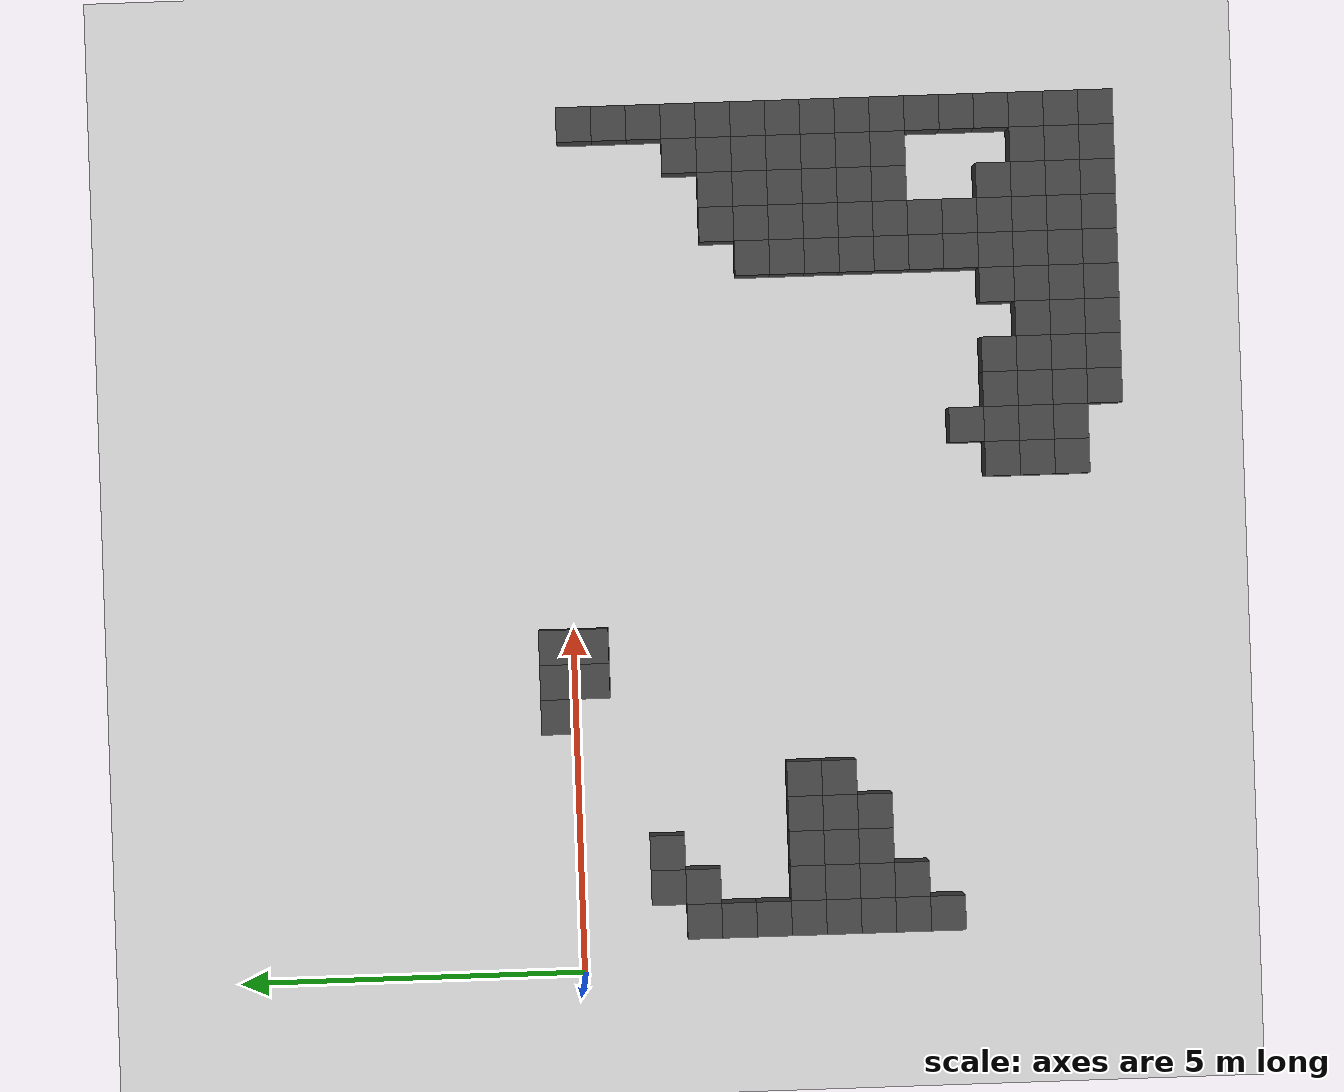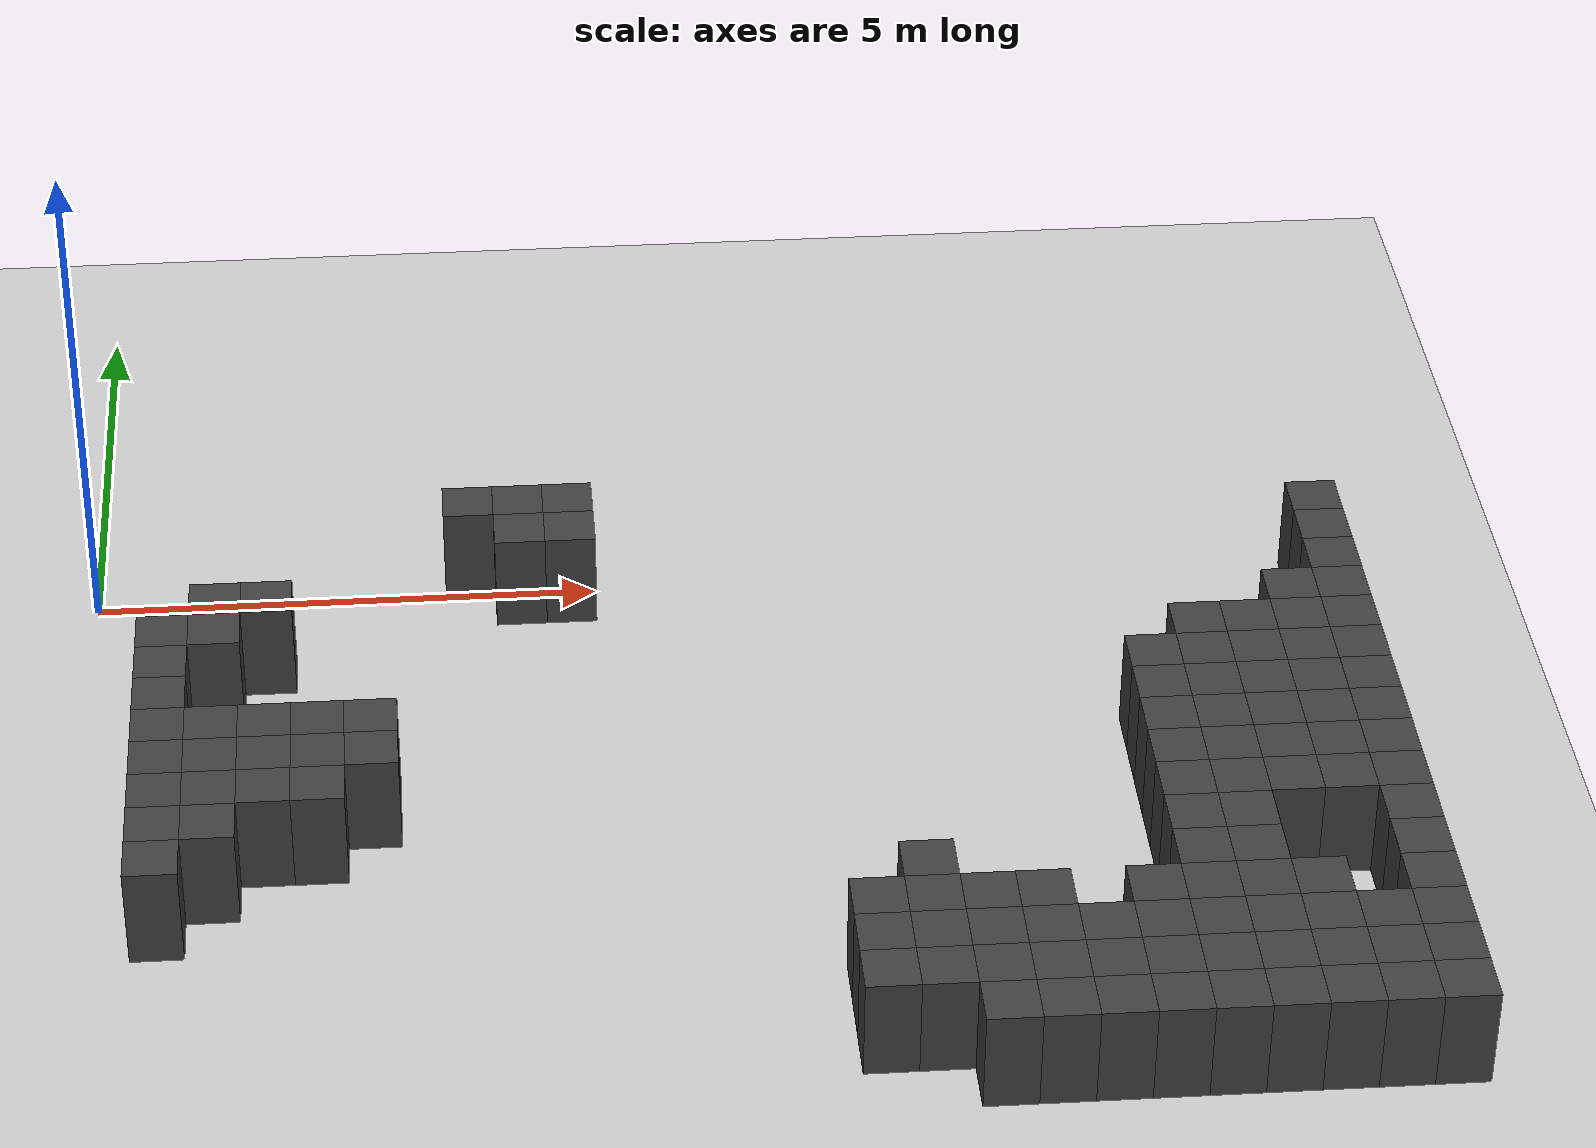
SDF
<sdf version="1.7">
 <world name="map_5937">
  <model name="ground_plane">
   <static>true</static>
   <link name="link">
    <collision name="collision">
     <geometry><plane><normal>0 0 1</normal><size>200 200</size></plane></geometry>
    </collision>
    <visual name="visual">
     <geometry><plane><normal>0 0 1</normal><size>200 200</size></plane></geometry>
     <material><ambient>0.8 0.8 0.8 1</ambient><diffuse>0.8 0.8 0.8 1</diffuse></material>
    </visual>
   </link>
  </model>
  <model name="maze_environment">
   <static>true</static>
   <link name="wall_219">
    <pose>3.750 0.250 0.500 0 0 0</pose>
    <collision name="col"><geometry><box><size>0.5 0.5 1.0</size></box></geometry></collision>
    <visual name="vis">
     <geometry><box><size>0.5 0.5 1.0</size></box></geometry>
     <material><ambient>0.15 0.15 0.15 1</ambient><diffuse>0.25 0.25 0.25 1</diffuse></material>
    </visual>
   </link>
   <link name="wall_220">
    <pose>4.250 0.250 0.500 0 0 0</pose>
    <collision name="col"><geometry><box><size>0.5 0.5 1.0</size></box></geometry></collision>
    <visual name="vis">
     <geometry><box><size>0.5 0.5 1.0</size></box></geometry>
     <material><ambient>0.15 0.15 0.15 1</ambient><diffuse>0.25 0.25 0.25 1</diffuse></material>
    </visual>
   </link>
   <link name="wall_221">
    <pose>4.750 0.250 0.500 0 0 0</pose>
    <collision name="col"><geometry><box><size>0.5 0.5 1.0</size></box></geometry></collision>
    <visual name="vis">
     <geometry><box><size>0.5 0.5 1.0</size></box></geometry>
     <material><ambient>0.15 0.15 0.15 1</ambient><diffuse>0.25 0.25 0.25 1</diffuse></material>
    </visual>
   </link>
   <link name="wall_226">
    <pose>4.250 -0.250 0.500 0 0 0</pose>
    <collision name="col"><geometry><box><size>0.5 0.5 1.0</size></box></geometry></collision>
    <visual name="vis">
     <geometry><box><size>0.5 0.5 1.0</size></box></geometry>
     <material><ambient>0.15 0.15 0.15 1</ambient><diffuse>0.25 0.25 0.25 1</diffuse></material>
    </visual>
   </link>
   <link name="wall_227">
    <pose>4.750 -0.250 0.500 0 0 0</pose>
    <collision name="col"><geometry><box><size>0.5 0.5 1.0</size></box></geometry></collision>
    <visual name="vis">
     <geometry><box><size>0.5 0.5 1.0</size></box></geometry>
     <material><ambient>0.15 0.15 0.15 1</ambient><diffuse>0.25 0.25 0.25 1</diffuse></material>
    </visual>
   </link>
   <link name="wall_228">
    <pose>12.250 -0.250 0.500 0 0 0</pose>
    <collision name="col"><geometry><box><size>0.5 0.5 1.0</size></box></geometry></collision>
    <visual name="vis">
     <geometry><box><size>0.5 0.5 1.0</size></box></geometry>
     <material><ambient>0.15 0.15 0.15 1</ambient><diffuse>0.25 0.25 0.25 1</diffuse></material>
    </visual>
   </link>
   <link name="wall_233">
    <pose>12.250 -0.750 0.500 0 0 0</pose>
    <collision name="col"><geometry><box><size>0.5 0.5 1.0</size></box></geometry></collision>
    <visual name="vis">
     <geometry><box><size>0.5 0.5 1.0</size></box></geometry>
     <material><ambient>0.15 0.15 0.15 1</ambient><diffuse>0.25 0.25 0.25 1</diffuse></material>
    </visual>
   </link>
   <link name="wall_237">
    <pose>1.250 -1.250 0.500 0 0 0</pose>
    <collision name="col"><geometry><box><size>0.5 0.5 1.0</size></box></geometry></collision>
    <visual name="vis">
     <geometry><box><size>0.5 0.5 1.0</size></box></geometry>
     <material><ambient>0.15 0.15 0.15 1</ambient><diffuse>0.25 0.25 0.25 1</diffuse></material>
    </visual>
   </link>
   <link name="wall_238">
    <pose>1.750 -1.250 0.500 0 0 0</pose>
    <collision name="col"><geometry><box><size>0.5 0.5 1.0</size></box></geometry></collision>
    <visual name="vis">
     <geometry><box><size>0.5 0.5 1.0</size></box></geometry>
     <material><ambient>0.15 0.15 0.15 1</ambient><diffuse>0.25 0.25 0.25 1</diffuse></material>
    </visual>
   </link>
   <link name="wall_239">
    <pose>12.250 -1.250 0.500 0 0 0</pose>
    <collision name="col"><geometry><box><size>0.5 0.5 1.0</size></box></geometry></collision>
    <visual name="vis">
     <geometry><box><size>0.5 0.5 1.0</size></box></geometry>
     <material><ambient>0.15 0.15 0.15 1</ambient><diffuse>0.25 0.25 0.25 1</diffuse></material>
    </visual>
   </link>
   <link name="wall_241">
    <pose>0.750 -1.750 0.500 0 0 0</pose>
    <collision name="col"><geometry><box><size>0.5 0.5 1.0</size></box></geometry></collision>
    <visual name="vis">
     <geometry><box><size>0.5 0.5 1.0</size></box></geometry>
     <material><ambient>0.15 0.15 0.15 1</ambient><diffuse>0.25 0.25 0.25 1</diffuse></material>
    </visual>
   </link>
   <link name="wall_242">
    <pose>1.250 -1.750 0.500 0 0 0</pose>
    <collision name="col"><geometry><box><size>0.5 0.5 1.0</size></box></geometry></collision>
    <visual name="vis">
     <geometry><box><size>0.5 0.5 1.0</size></box></geometry>
     <material><ambient>0.15 0.15 0.15 1</ambient><diffuse>0.25 0.25 0.25 1</diffuse></material>
    </visual>
   </link>
   <link name="wall_243">
    <pose>11.750 -1.750 0.500 0 0 0</pose>
    <collision name="col"><geometry><box><size>0.5 0.5 1.0</size></box></geometry></collision>
    <visual name="vis">
     <geometry><box><size>0.5 0.5 1.0</size></box></geometry>
     <material><ambient>0.15 0.15 0.15 1</ambient><diffuse>0.25 0.25 0.25 1</diffuse></material>
    </visual>
   </link>
   <link name="wall_244">
    <pose>12.250 -1.750 0.500 0 0 0</pose>
    <collision name="col"><geometry><box><size>0.5 0.5 1.0</size></box></geometry></collision>
    <visual name="vis">
     <geometry><box><size>0.5 0.5 1.0</size></box></geometry>
     <material><ambient>0.15 0.15 0.15 1</ambient><diffuse>0.25 0.25 0.25 1</diffuse></material>
    </visual>
   </link>
   <link name="wall_247">
    <pose>0.750 -2.250 0.500 0 0 0</pose>
    <collision name="col"><geometry><box><size>0.5 0.5 1.0</size></box></geometry></collision>
    <visual name="vis">
     <geometry><box><size>0.5 0.5 1.0</size></box></geometry>
     <material><ambient>0.15 0.15 0.15 1</ambient><diffuse>0.25 0.25 0.25 1</diffuse></material>
    </visual>
   </link>
   <link name="wall_248">
    <pose>10.750 -2.250 0.500 0 0 0</pose>
    <collision name="col"><geometry><box><size>0.5 0.5 1.0</size></box></geometry></collision>
    <visual name="vis">
     <geometry><box><size>0.5 0.5 1.0</size></box></geometry>
     <material><ambient>0.15 0.15 0.15 1</ambient><diffuse>0.25 0.25 0.25 1</diffuse></material>
    </visual>
   </link>
   <link name="wall_249">
    <pose>11.250 -2.250 0.500 0 0 0</pose>
    <collision name="col"><geometry><box><size>0.5 0.5 1.0</size></box></geometry></collision>
    <visual name="vis">
     <geometry><box><size>0.5 0.5 1.0</size></box></geometry>
     <material><ambient>0.15 0.15 0.15 1</ambient><diffuse>0.25 0.25 0.25 1</diffuse></material>
    </visual>
   </link>
   <link name="wall_250">
    <pose>11.750 -2.250 0.500 0 0 0</pose>
    <collision name="col"><geometry><box><size>0.5 0.5 1.0</size></box></geometry></collision>
    <visual name="vis">
     <geometry><box><size>0.5 0.5 1.0</size></box></geometry>
     <material><ambient>0.15 0.15 0.15 1</ambient><diffuse>0.25 0.25 0.25 1</diffuse></material>
    </visual>
   </link>
   <link name="wall_251">
    <pose>12.250 -2.250 0.500 0 0 0</pose>
    <collision name="col"><geometry><box><size>0.5 0.5 1.0</size></box></geometry></collision>
    <visual name="vis">
     <geometry><box><size>0.5 0.5 1.0</size></box></geometry>
     <material><ambient>0.15 0.15 0.15 1</ambient><diffuse>0.25 0.25 0.25 1</diffuse></material>
    </visual>
   </link>
   <link name="wall_255">
    <pose>0.750 -2.750 0.500 0 0 0</pose>
    <collision name="col"><geometry><box><size>0.5 0.5 1.0</size></box></geometry></collision>
    <visual name="vis">
     <geometry><box><size>0.5 0.5 1.0</size></box></geometry>
     <material><ambient>0.15 0.15 0.15 1</ambient><diffuse>0.25 0.25 0.25 1</diffuse></material>
    </visual>
   </link>
   <link name="wall_256">
    <pose>10.250 -2.750 0.500 0 0 0</pose>
    <collision name="col"><geometry><box><size>0.5 0.5 1.0</size></box></geometry></collision>
    <visual name="vis">
     <geometry><box><size>0.5 0.5 1.0</size></box></geometry>
     <material><ambient>0.15 0.15 0.15 1</ambient><diffuse>0.25 0.25 0.25 1</diffuse></material>
    </visual>
   </link>
   <link name="wall_257">
    <pose>10.750 -2.750 0.500 0 0 0</pose>
    <collision name="col"><geometry><box><size>0.5 0.5 1.0</size></box></geometry></collision>
    <visual name="vis">
     <geometry><box><size>0.5 0.5 1.0</size></box></geometry>
     <material><ambient>0.15 0.15 0.15 1</ambient><diffuse>0.25 0.25 0.25 1</diffuse></material>
    </visual>
   </link>
   <link name="wall_258">
    <pose>11.250 -2.750 0.500 0 0 0</pose>
    <collision name="col"><geometry><box><size>0.5 0.5 1.0</size></box></geometry></collision>
    <visual name="vis">
     <geometry><box><size>0.5 0.5 1.0</size></box></geometry>
     <material><ambient>0.15 0.15 0.15 1</ambient><diffuse>0.25 0.25 0.25 1</diffuse></material>
    </visual>
   </link>
   <link name="wall_259">
    <pose>11.750 -2.750 0.500 0 0 0</pose>
    <collision name="col"><geometry><box><size>0.5 0.5 1.0</size></box></geometry></collision>
    <visual name="vis">
     <geometry><box><size>0.5 0.5 1.0</size></box></geometry>
     <material><ambient>0.15 0.15 0.15 1</ambient><diffuse>0.25 0.25 0.25 1</diffuse></material>
    </visual>
   </link>
   <link name="wall_260">
    <pose>12.250 -2.750 0.500 0 0 0</pose>
    <collision name="col"><geometry><box><size>0.5 0.5 1.0</size></box></geometry></collision>
    <visual name="vis">
     <geometry><box><size>0.5 0.5 1.0</size></box></geometry>
     <material><ambient>0.15 0.15 0.15 1</ambient><diffuse>0.25 0.25 0.25 1</diffuse></material>
    </visual>
   </link>
   <link name="wall_264">
    <pose>0.750 -3.250 0.500 0 0 0</pose>
    <collision name="col"><geometry><box><size>0.5 0.5 1.0</size></box></geometry></collision>
    <visual name="vis">
     <geometry><box><size>0.5 0.5 1.0</size></box></geometry>
     <material><ambient>0.15 0.15 0.15 1</ambient><diffuse>0.25 0.25 0.25 1</diffuse></material>
    </visual>
   </link>
   <link name="wall_265">
    <pose>1.250 -3.250 0.500 0 0 0</pose>
    <collision name="col"><geometry><box><size>0.5 0.5 1.0</size></box></geometry></collision>
    <visual name="vis">
     <geometry><box><size>0.5 0.5 1.0</size></box></geometry>
     <material><ambient>0.15 0.15 0.15 1</ambient><diffuse>0.25 0.25 0.25 1</diffuse></material>
    </visual>
   </link>
   <link name="wall_266">
    <pose>1.750 -3.250 0.500 0 0 0</pose>
    <collision name="col"><geometry><box><size>0.5 0.5 1.0</size></box></geometry></collision>
    <visual name="vis">
     <geometry><box><size>0.5 0.5 1.0</size></box></geometry>
     <material><ambient>0.15 0.15 0.15 1</ambient><diffuse>0.25 0.25 0.25 1</diffuse></material>
    </visual>
   </link>
   <link name="wall_267">
    <pose>2.250 -3.250 0.500 0 0 0</pose>
    <collision name="col"><geometry><box><size>0.5 0.5 1.0</size></box></geometry></collision>
    <visual name="vis">
     <geometry><box><size>0.5 0.5 1.0</size></box></geometry>
     <material><ambient>0.15 0.15 0.15 1</ambient><diffuse>0.25 0.25 0.25 1</diffuse></material>
    </visual>
   </link>
   <link name="wall_268">
    <pose>2.750 -3.250 0.500 0 0 0</pose>
    <collision name="col"><geometry><box><size>0.5 0.5 1.0</size></box></geometry></collision>
    <visual name="vis">
     <geometry><box><size>0.5 0.5 1.0</size></box></geometry>
     <material><ambient>0.15 0.15 0.15 1</ambient><diffuse>0.25 0.25 0.25 1</diffuse></material>
    </visual>
   </link>
   <link name="wall_269">
    <pose>10.250 -3.250 0.500 0 0 0</pose>
    <collision name="col"><geometry><box><size>0.5 0.5 1.0</size></box></geometry></collision>
    <visual name="vis">
     <geometry><box><size>0.5 0.5 1.0</size></box></geometry>
     <material><ambient>0.15 0.15 0.15 1</ambient><diffuse>0.25 0.25 0.25 1</diffuse></material>
    </visual>
   </link>
   <link name="wall_270">
    <pose>10.750 -3.250 0.500 0 0 0</pose>
    <collision name="col"><geometry><box><size>0.5 0.5 1.0</size></box></geometry></collision>
    <visual name="vis">
     <geometry><box><size>0.5 0.5 1.0</size></box></geometry>
     <material><ambient>0.15 0.15 0.15 1</ambient><diffuse>0.25 0.25 0.25 1</diffuse></material>
    </visual>
   </link>
   <link name="wall_271">
    <pose>11.250 -3.250 0.500 0 0 0</pose>
    <collision name="col"><geometry><box><size>0.5 0.5 1.0</size></box></geometry></collision>
    <visual name="vis">
     <geometry><box><size>0.5 0.5 1.0</size></box></geometry>
     <material><ambient>0.15 0.15 0.15 1</ambient><diffuse>0.25 0.25 0.25 1</diffuse></material>
    </visual>
   </link>
   <link name="wall_272">
    <pose>11.750 -3.250 0.500 0 0 0</pose>
    <collision name="col"><geometry><box><size>0.5 0.5 1.0</size></box></geometry></collision>
    <visual name="vis">
     <geometry><box><size>0.5 0.5 1.0</size></box></geometry>
     <material><ambient>0.15 0.15 0.15 1</ambient><diffuse>0.25 0.25 0.25 1</diffuse></material>
    </visual>
   </link>
   <link name="wall_273">
    <pose>12.250 -3.250 0.500 0 0 0</pose>
    <collision name="col"><geometry><box><size>0.5 0.5 1.0</size></box></geometry></collision>
    <visual name="vis">
     <geometry><box><size>0.5 0.5 1.0</size></box></geometry>
     <material><ambient>0.15 0.15 0.15 1</ambient><diffuse>0.25 0.25 0.25 1</diffuse></material>
    </visual>
   </link>
   <link name="wall_277">
    <pose>0.750 -3.750 0.500 0 0 0</pose>
    <collision name="col"><geometry><box><size>0.5 0.5 1.0</size></box></geometry></collision>
    <visual name="vis">
     <geometry><box><size>0.5 0.5 1.0</size></box></geometry>
     <material><ambient>0.15 0.15 0.15 1</ambient><diffuse>0.25 0.25 0.25 1</diffuse></material>
    </visual>
   </link>
   <link name="wall_278">
    <pose>1.250 -3.750 0.500 0 0 0</pose>
    <collision name="col"><geometry><box><size>0.5 0.5 1.0</size></box></geometry></collision>
    <visual name="vis">
     <geometry><box><size>0.5 0.5 1.0</size></box></geometry>
     <material><ambient>0.15 0.15 0.15 1</ambient><diffuse>0.25 0.25 0.25 1</diffuse></material>
    </visual>
   </link>
   <link name="wall_279">
    <pose>1.750 -3.750 0.500 0 0 0</pose>
    <collision name="col"><geometry><box><size>0.5 0.5 1.0</size></box></geometry></collision>
    <visual name="vis">
     <geometry><box><size>0.5 0.5 1.0</size></box></geometry>
     <material><ambient>0.15 0.15 0.15 1</ambient><diffuse>0.25 0.25 0.25 1</diffuse></material>
    </visual>
   </link>
   <link name="wall_280">
    <pose>2.250 -3.750 0.500 0 0 0</pose>
    <collision name="col"><geometry><box><size>0.5 0.5 1.0</size></box></geometry></collision>
    <visual name="vis">
     <geometry><box><size>0.5 0.5 1.0</size></box></geometry>
     <material><ambient>0.15 0.15 0.15 1</ambient><diffuse>0.25 0.25 0.25 1</diffuse></material>
    </visual>
   </link>
   <link name="wall_281">
    <pose>2.750 -3.750 0.500 0 0 0</pose>
    <collision name="col"><geometry><box><size>0.5 0.5 1.0</size></box></geometry></collision>
    <visual name="vis">
     <geometry><box><size>0.5 0.5 1.0</size></box></geometry>
     <material><ambient>0.15 0.15 0.15 1</ambient><diffuse>0.25 0.25 0.25 1</diffuse></material>
    </visual>
   </link>
   <link name="wall_282">
    <pose>10.250 -3.750 0.500 0 0 0</pose>
    <collision name="col"><geometry><box><size>0.5 0.5 1.0</size></box></geometry></collision>
    <visual name="vis">
     <geometry><box><size>0.5 0.5 1.0</size></box></geometry>
     <material><ambient>0.15 0.15 0.15 1</ambient><diffuse>0.25 0.25 0.25 1</diffuse></material>
    </visual>
   </link>
   <link name="wall_283">
    <pose>10.750 -3.750 0.500 0 0 0</pose>
    <collision name="col"><geometry><box><size>0.5 0.5 1.0</size></box></geometry></collision>
    <visual name="vis">
     <geometry><box><size>0.5 0.5 1.0</size></box></geometry>
     <material><ambient>0.15 0.15 0.15 1</ambient><diffuse>0.25 0.25 0.25 1</diffuse></material>
    </visual>
   </link>
   <link name="wall_284">
    <pose>11.250 -3.750 0.500 0 0 0</pose>
    <collision name="col"><geometry><box><size>0.5 0.5 1.0</size></box></geometry></collision>
    <visual name="vis">
     <geometry><box><size>0.5 0.5 1.0</size></box></geometry>
     <material><ambient>0.15 0.15 0.15 1</ambient><diffuse>0.25 0.25 0.25 1</diffuse></material>
    </visual>
   </link>
   <link name="wall_285">
    <pose>11.750 -3.750 0.500 0 0 0</pose>
    <collision name="col"><geometry><box><size>0.5 0.5 1.0</size></box></geometry></collision>
    <visual name="vis">
     <geometry><box><size>0.5 0.5 1.0</size></box></geometry>
     <material><ambient>0.15 0.15 0.15 1</ambient><diffuse>0.25 0.25 0.25 1</diffuse></material>
    </visual>
   </link>
   <link name="wall_286">
    <pose>12.250 -3.750 0.500 0 0 0</pose>
    <collision name="col"><geometry><box><size>0.5 0.5 1.0</size></box></geometry></collision>
    <visual name="vis">
     <geometry><box><size>0.5 0.5 1.0</size></box></geometry>
     <material><ambient>0.15 0.15 0.15 1</ambient><diffuse>0.25 0.25 0.25 1</diffuse></material>
    </visual>
   </link>
   <link name="wall_290">
    <pose>0.750 -4.250 0.500 0 0 0</pose>
    <collision name="col"><geometry><box><size>0.5 0.5 1.0</size></box></geometry></collision>
    <visual name="vis">
     <geometry><box><size>0.5 0.5 1.0</size></box></geometry>
     <material><ambient>0.15 0.15 0.15 1</ambient><diffuse>0.25 0.25 0.25 1</diffuse></material>
    </visual>
   </link>
   <link name="wall_291">
    <pose>1.250 -4.250 0.500 0 0 0</pose>
    <collision name="col"><geometry><box><size>0.5 0.5 1.0</size></box></geometry></collision>
    <visual name="vis">
     <geometry><box><size>0.5 0.5 1.0</size></box></geometry>
     <material><ambient>0.15 0.15 0.15 1</ambient><diffuse>0.25 0.25 0.25 1</diffuse></material>
    </visual>
   </link>
   <link name="wall_292">
    <pose>1.750 -4.250 0.500 0 0 0</pose>
    <collision name="col"><geometry><box><size>0.5 0.5 1.0</size></box></geometry></collision>
    <visual name="vis">
     <geometry><box><size>0.5 0.5 1.0</size></box></geometry>
     <material><ambient>0.15 0.15 0.15 1</ambient><diffuse>0.25 0.25 0.25 1</diffuse></material>
    </visual>
   </link>
   <link name="wall_293">
    <pose>2.250 -4.250 0.500 0 0 0</pose>
    <collision name="col"><geometry><box><size>0.5 0.5 1.0</size></box></geometry></collision>
    <visual name="vis">
     <geometry><box><size>0.5 0.5 1.0</size></box></geometry>
     <material><ambient>0.15 0.15 0.15 1</ambient><diffuse>0.25 0.25 0.25 1</diffuse></material>
    </visual>
   </link>
   <link name="wall_294">
    <pose>10.250 -4.250 0.500 0 0 0</pose>
    <collision name="col"><geometry><box><size>0.5 0.5 1.0</size></box></geometry></collision>
    <visual name="vis">
     <geometry><box><size>0.5 0.5 1.0</size></box></geometry>
     <material><ambient>0.15 0.15 0.15 1</ambient><diffuse>0.25 0.25 0.25 1</diffuse></material>
    </visual>
   </link>
   <link name="wall_295">
    <pose>10.750 -4.250 0.500 0 0 0</pose>
    <collision name="col"><geometry><box><size>0.5 0.5 1.0</size></box></geometry></collision>
    <visual name="vis">
     <geometry><box><size>0.5 0.5 1.0</size></box></geometry>
     <material><ambient>0.15 0.15 0.15 1</ambient><diffuse>0.25 0.25 0.25 1</diffuse></material>
    </visual>
   </link>
   <link name="wall_296">
    <pose>11.250 -4.250 0.500 0 0 0</pose>
    <collision name="col"><geometry><box><size>0.5 0.5 1.0</size></box></geometry></collision>
    <visual name="vis">
     <geometry><box><size>0.5 0.5 1.0</size></box></geometry>
     <material><ambient>0.15 0.15 0.15 1</ambient><diffuse>0.25 0.25 0.25 1</diffuse></material>
    </visual>
   </link>
   <link name="wall_297">
    <pose>11.750 -4.250 0.500 0 0 0</pose>
    <collision name="col"><geometry><box><size>0.5 0.5 1.0</size></box></geometry></collision>
    <visual name="vis">
     <geometry><box><size>0.5 0.5 1.0</size></box></geometry>
     <material><ambient>0.15 0.15 0.15 1</ambient><diffuse>0.25 0.25 0.25 1</diffuse></material>
    </visual>
   </link>
   <link name="wall_298">
    <pose>12.250 -4.250 0.500 0 0 0</pose>
    <collision name="col"><geometry><box><size>0.5 0.5 1.0</size></box></geometry></collision>
    <visual name="vis">
     <geometry><box><size>0.5 0.5 1.0</size></box></geometry>
     <material><ambient>0.15 0.15 0.15 1</ambient><diffuse>0.25 0.25 0.25 1</diffuse></material>
    </visual>
   </link>
   <link name="wall_303">
    <pose>0.750 -4.750 0.500 0 0 0</pose>
    <collision name="col"><geometry><box><size>0.5 0.5 1.0</size></box></geometry></collision>
    <visual name="vis">
     <geometry><box><size>0.5 0.5 1.0</size></box></geometry>
     <material><ambient>0.15 0.15 0.15 1</ambient><diffuse>0.25 0.25 0.25 1</diffuse></material>
    </visual>
   </link>
   <link name="wall_304">
    <pose>1.250 -4.750 0.500 0 0 0</pose>
    <collision name="col"><geometry><box><size>0.5 0.5 1.0</size></box></geometry></collision>
    <visual name="vis">
     <geometry><box><size>0.5 0.5 1.0</size></box></geometry>
     <material><ambient>0.15 0.15 0.15 1</ambient><diffuse>0.25 0.25 0.25 1</diffuse></material>
    </visual>
   </link>
   <link name="wall_305">
    <pose>10.250 -4.750 0.500 0 0 0</pose>
    <collision name="col"><geometry><box><size>0.5 0.5 1.0</size></box></geometry></collision>
    <visual name="vis">
     <geometry><box><size>0.5 0.5 1.0</size></box></geometry>
     <material><ambient>0.15 0.15 0.15 1</ambient><diffuse>0.25 0.25 0.25 1</diffuse></material>
    </visual>
   </link>
   <link name="wall_306">
    <pose>10.750 -4.750 0.500 0 0 0</pose>
    <collision name="col"><geometry><box><size>0.5 0.5 1.0</size></box></geometry></collision>
    <visual name="vis">
     <geometry><box><size>0.5 0.5 1.0</size></box></geometry>
     <material><ambient>0.15 0.15 0.15 1</ambient><diffuse>0.25 0.25 0.25 1</diffuse></material>
    </visual>
   </link>
   <link name="wall_307">
    <pose>11.250 -4.750 0.500 0 0 0</pose>
    <collision name="col"><geometry><box><size>0.5 0.5 1.0</size></box></geometry></collision>
    <visual name="vis">
     <geometry><box><size>0.5 0.5 1.0</size></box></geometry>
     <material><ambient>0.15 0.15 0.15 1</ambient><diffuse>0.25 0.25 0.25 1</diffuse></material>
    </visual>
   </link>
   <link name="wall_308">
    <pose>11.750 -4.750 0.500 0 0 0</pose>
    <collision name="col"><geometry><box><size>0.5 0.5 1.0</size></box></geometry></collision>
    <visual name="vis">
     <geometry><box><size>0.5 0.5 1.0</size></box></geometry>
     <material><ambient>0.15 0.15 0.15 1</ambient><diffuse>0.25 0.25 0.25 1</diffuse></material>
    </visual>
   </link>
   <link name="wall_309">
    <pose>12.250 -4.750 0.500 0 0 0</pose>
    <collision name="col"><geometry><box><size>0.5 0.5 1.0</size></box></geometry></collision>
    <visual name="vis">
     <geometry><box><size>0.5 0.5 1.0</size></box></geometry>
     <material><ambient>0.15 0.15 0.15 1</ambient><diffuse>0.25 0.25 0.25 1</diffuse></material>
    </visual>
   </link>
   <link name="wall_314">
    <pose>0.750 -5.250 0.500 0 0 0</pose>
    <collision name="col"><geometry><box><size>0.5 0.5 1.0</size></box></geometry></collision>
    <visual name="vis">
     <geometry><box><size>0.5 0.5 1.0</size></box></geometry>
     <material><ambient>0.15 0.15 0.15 1</ambient><diffuse>0.25 0.25 0.25 1</diffuse></material>
    </visual>
   </link>
   <link name="wall_315">
    <pose>10.250 -5.250 0.500 0 0 0</pose>
    <collision name="col"><geometry><box><size>0.5 0.5 1.0</size></box></geometry></collision>
    <visual name="vis">
     <geometry><box><size>0.5 0.5 1.0</size></box></geometry>
     <material><ambient>0.15 0.15 0.15 1</ambient><diffuse>0.25 0.25 0.25 1</diffuse></material>
    </visual>
   </link>
   <link name="wall_316">
    <pose>10.750 -5.250 0.500 0 0 0</pose>
    <collision name="col"><geometry><box><size>0.5 0.5 1.0</size></box></geometry></collision>
    <visual name="vis">
     <geometry><box><size>0.5 0.5 1.0</size></box></geometry>
     <material><ambient>0.15 0.15 0.15 1</ambient><diffuse>0.25 0.25 0.25 1</diffuse></material>
    </visual>
   </link>
   <link name="wall_317">
    <pose>12.250 -5.250 0.500 0 0 0</pose>
    <collision name="col"><geometry><box><size>0.5 0.5 1.0</size></box></geometry></collision>
    <visual name="vis">
     <geometry><box><size>0.5 0.5 1.0</size></box></geometry>
     <material><ambient>0.15 0.15 0.15 1</ambient><diffuse>0.25 0.25 0.25 1</diffuse></material>
    </visual>
   </link>
   <link name="wall_321">
    <pose>7.750 -5.750 0.500 0 0 0</pose>
    <collision name="col"><geometry><box><size>0.5 0.5 1.0</size></box></geometry></collision>
    <visual name="vis">
     <geometry><box><size>0.5 0.5 1.0</size></box></geometry>
     <material><ambient>0.15 0.15 0.15 1</ambient><diffuse>0.25 0.25 0.25 1</diffuse></material>
    </visual>
   </link>
   <link name="wall_322">
    <pose>10.250 -5.750 0.500 0 0 0</pose>
    <collision name="col"><geometry><box><size>0.5 0.5 1.0</size></box></geometry></collision>
    <visual name="vis">
     <geometry><box><size>0.5 0.5 1.0</size></box></geometry>
     <material><ambient>0.15 0.15 0.15 1</ambient><diffuse>0.25 0.25 0.25 1</diffuse></material>
    </visual>
   </link>
   <link name="wall_323">
    <pose>10.750 -5.750 0.500 0 0 0</pose>
    <collision name="col"><geometry><box><size>0.5 0.5 1.0</size></box></geometry></collision>
    <visual name="vis">
     <geometry><box><size>0.5 0.5 1.0</size></box></geometry>
     <material><ambient>0.15 0.15 0.15 1</ambient><diffuse>0.25 0.25 0.25 1</diffuse></material>
    </visual>
   </link>
   <link name="wall_324">
    <pose>12.250 -5.750 0.500 0 0 0</pose>
    <collision name="col"><geometry><box><size>0.5 0.5 1.0</size></box></geometry></collision>
    <visual name="vis">
     <geometry><box><size>0.5 0.5 1.0</size></box></geometry>
     <material><ambient>0.15 0.15 0.15 1</ambient><diffuse>0.25 0.25 0.25 1</diffuse></material>
    </visual>
   </link>
   <link name="wall_326">
    <pose>7.250 -6.250 0.500 0 0 0</pose>
    <collision name="col"><geometry><box><size>0.5 0.5 1.0</size></box></geometry></collision>
    <visual name="vis">
     <geometry><box><size>0.5 0.5 1.0</size></box></geometry>
     <material><ambient>0.15 0.15 0.15 1</ambient><diffuse>0.25 0.25 0.25 1</diffuse></material>
    </visual>
   </link>
   <link name="wall_327">
    <pose>7.750 -6.250 0.500 0 0 0</pose>
    <collision name="col"><geometry><box><size>0.5 0.5 1.0</size></box></geometry></collision>
    <visual name="vis">
     <geometry><box><size>0.5 0.5 1.0</size></box></geometry>
     <material><ambient>0.15 0.15 0.15 1</ambient><diffuse>0.25 0.25 0.25 1</diffuse></material>
    </visual>
   </link>
   <link name="wall_328">
    <pose>8.250 -6.250 0.500 0 0 0</pose>
    <collision name="col"><geometry><box><size>0.5 0.5 1.0</size></box></geometry></collision>
    <visual name="vis">
     <geometry><box><size>0.5 0.5 1.0</size></box></geometry>
     <material><ambient>0.15 0.15 0.15 1</ambient><diffuse>0.25 0.25 0.25 1</diffuse></material>
    </visual>
   </link>
   <link name="wall_329">
    <pose>8.750 -6.250 0.500 0 0 0</pose>
    <collision name="col"><geometry><box><size>0.5 0.5 1.0</size></box></geometry></collision>
    <visual name="vis">
     <geometry><box><size>0.5 0.5 1.0</size></box></geometry>
     <material><ambient>0.15 0.15 0.15 1</ambient><diffuse>0.25 0.25 0.25 1</diffuse></material>
    </visual>
   </link>
   <link name="wall_330">
    <pose>9.750 -6.250 0.500 0 0 0</pose>
    <collision name="col"><geometry><box><size>0.5 0.5 1.0</size></box></geometry></collision>
    <visual name="vis">
     <geometry><box><size>0.5 0.5 1.0</size></box></geometry>
     <material><ambient>0.15 0.15 0.15 1</ambient><diffuse>0.25 0.25 0.25 1</diffuse></material>
    </visual>
   </link>
   <link name="wall_331">
    <pose>10.250 -6.250 0.500 0 0 0</pose>
    <collision name="col"><geometry><box><size>0.5 0.5 1.0</size></box></geometry></collision>
    <visual name="vis">
     <geometry><box><size>0.5 0.5 1.0</size></box></geometry>
     <material><ambient>0.15 0.15 0.15 1</ambient><diffuse>0.25 0.25 0.25 1</diffuse></material>
    </visual>
   </link>
   <link name="wall_332">
    <pose>10.750 -6.250 0.500 0 0 0</pose>
    <collision name="col"><geometry><box><size>0.5 0.5 1.0</size></box></geometry></collision>
    <visual name="vis">
     <geometry><box><size>0.5 0.5 1.0</size></box></geometry>
     <material><ambient>0.15 0.15 0.15 1</ambient><diffuse>0.25 0.25 0.25 1</diffuse></material>
    </visual>
   </link>
   <link name="wall_333">
    <pose>11.250 -6.250 0.500 0 0 0</pose>
    <collision name="col"><geometry><box><size>0.5 0.5 1.0</size></box></geometry></collision>
    <visual name="vis">
     <geometry><box><size>0.5 0.5 1.0</size></box></geometry>
     <material><ambient>0.15 0.15 0.15 1</ambient><diffuse>0.25 0.25 0.25 1</diffuse></material>
    </visual>
   </link>
   <link name="wall_334">
    <pose>12.250 -6.250 0.500 0 0 0</pose>
    <collision name="col"><geometry><box><size>0.5 0.5 1.0</size></box></geometry></collision>
    <visual name="vis">
     <geometry><box><size>0.5 0.5 1.0</size></box></geometry>
     <material><ambient>0.15 0.15 0.15 1</ambient><diffuse>0.25 0.25 0.25 1</diffuse></material>
    </visual>
   </link>
   <link name="wall_338">
    <pose>7.250 -6.750 0.500 0 0 0</pose>
    <collision name="col"><geometry><box><size>0.5 0.5 1.0</size></box></geometry></collision>
    <visual name="vis">
     <geometry><box><size>0.5 0.5 1.0</size></box></geometry>
     <material><ambient>0.15 0.15 0.15 1</ambient><diffuse>0.25 0.25 0.25 1</diffuse></material>
    </visual>
   </link>
   <link name="wall_339">
    <pose>7.750 -6.750 0.500 0 0 0</pose>
    <collision name="col"><geometry><box><size>0.5 0.5 1.0</size></box></geometry></collision>
    <visual name="vis">
     <geometry><box><size>0.5 0.5 1.0</size></box></geometry>
     <material><ambient>0.15 0.15 0.15 1</ambient><diffuse>0.25 0.25 0.25 1</diffuse></material>
    </visual>
   </link>
   <link name="wall_340">
    <pose>8.250 -6.750 0.500 0 0 0</pose>
    <collision name="col"><geometry><box><size>0.5 0.5 1.0</size></box></geometry></collision>
    <visual name="vis">
     <geometry><box><size>0.5 0.5 1.0</size></box></geometry>
     <material><ambient>0.15 0.15 0.15 1</ambient><diffuse>0.25 0.25 0.25 1</diffuse></material>
    </visual>
   </link>
   <link name="wall_341">
    <pose>8.750 -6.750 0.500 0 0 0</pose>
    <collision name="col"><geometry><box><size>0.5 0.5 1.0</size></box></geometry></collision>
    <visual name="vis">
     <geometry><box><size>0.5 0.5 1.0</size></box></geometry>
     <material><ambient>0.15 0.15 0.15 1</ambient><diffuse>0.25 0.25 0.25 1</diffuse></material>
    </visual>
   </link>
   <link name="wall_342">
    <pose>9.250 -6.750 0.500 0 0 0</pose>
    <collision name="col"><geometry><box><size>0.5 0.5 1.0</size></box></geometry></collision>
    <visual name="vis">
     <geometry><box><size>0.5 0.5 1.0</size></box></geometry>
     <material><ambient>0.15 0.15 0.15 1</ambient><diffuse>0.25 0.25 0.25 1</diffuse></material>
    </visual>
   </link>
   <link name="wall_343">
    <pose>9.750 -6.750 0.500 0 0 0</pose>
    <collision name="col"><geometry><box><size>0.5 0.5 1.0</size></box></geometry></collision>
    <visual name="vis">
     <geometry><box><size>0.5 0.5 1.0</size></box></geometry>
     <material><ambient>0.15 0.15 0.15 1</ambient><diffuse>0.25 0.25 0.25 1</diffuse></material>
    </visual>
   </link>
   <link name="wall_344">
    <pose>10.250 -6.750 0.500 0 0 0</pose>
    <collision name="col"><geometry><box><size>0.5 0.5 1.0</size></box></geometry></collision>
    <visual name="vis">
     <geometry><box><size>0.5 0.5 1.0</size></box></geometry>
     <material><ambient>0.15 0.15 0.15 1</ambient><diffuse>0.25 0.25 0.25 1</diffuse></material>
    </visual>
   </link>
   <link name="wall_345">
    <pose>10.750 -6.750 0.500 0 0 0</pose>
    <collision name="col"><geometry><box><size>0.5 0.5 1.0</size></box></geometry></collision>
    <visual name="vis">
     <geometry><box><size>0.5 0.5 1.0</size></box></geometry>
     <material><ambient>0.15 0.15 0.15 1</ambient><diffuse>0.25 0.25 0.25 1</diffuse></material>
    </visual>
   </link>
   <link name="wall_346">
    <pose>11.250 -6.750 0.500 0 0 0</pose>
    <collision name="col"><geometry><box><size>0.5 0.5 1.0</size></box></geometry></collision>
    <visual name="vis">
     <geometry><box><size>0.5 0.5 1.0</size></box></geometry>
     <material><ambient>0.15 0.15 0.15 1</ambient><diffuse>0.25 0.25 0.25 1</diffuse></material>
    </visual>
   </link>
   <link name="wall_347">
    <pose>11.750 -6.750 0.500 0 0 0</pose>
    <collision name="col"><geometry><box><size>0.5 0.5 1.0</size></box></geometry></collision>
    <visual name="vis">
     <geometry><box><size>0.5 0.5 1.0</size></box></geometry>
     <material><ambient>0.15 0.15 0.15 1</ambient><diffuse>0.25 0.25 0.25 1</diffuse></material>
    </visual>
   </link>
   <link name="wall_348">
    <pose>12.250 -6.750 0.500 0 0 0</pose>
    <collision name="col"><geometry><box><size>0.5 0.5 1.0</size></box></geometry></collision>
    <visual name="vis">
     <geometry><box><size>0.5 0.5 1.0</size></box></geometry>
     <material><ambient>0.15 0.15 0.15 1</ambient><diffuse>0.25 0.25 0.25 1</diffuse></material>
    </visual>
   </link>
   <link name="wall_353">
    <pose>7.250 -7.250 0.500 0 0 0</pose>
    <collision name="col"><geometry><box><size>0.5 0.5 1.0</size></box></geometry></collision>
    <visual name="vis">
     <geometry><box><size>0.5 0.5 1.0</size></box></geometry>
     <material><ambient>0.15 0.15 0.15 1</ambient><diffuse>0.25 0.25 0.25 1</diffuse></material>
    </visual>
   </link>
   <link name="wall_354">
    <pose>7.750 -7.250 0.500 0 0 0</pose>
    <collision name="col"><geometry><box><size>0.5 0.5 1.0</size></box></geometry></collision>
    <visual name="vis">
     <geometry><box><size>0.5 0.5 1.0</size></box></geometry>
     <material><ambient>0.15 0.15 0.15 1</ambient><diffuse>0.25 0.25 0.25 1</diffuse></material>
    </visual>
   </link>
   <link name="wall_355">
    <pose>8.250 -7.250 0.500 0 0 0</pose>
    <collision name="col"><geometry><box><size>0.5 0.5 1.0</size></box></geometry></collision>
    <visual name="vis">
     <geometry><box><size>0.5 0.5 1.0</size></box></geometry>
     <material><ambient>0.15 0.15 0.15 1</ambient><diffuse>0.25 0.25 0.25 1</diffuse></material>
    </visual>
   </link>
   <link name="wall_356">
    <pose>8.750 -7.250 0.500 0 0 0</pose>
    <collision name="col"><geometry><box><size>0.5 0.5 1.0</size></box></geometry></collision>
    <visual name="vis">
     <geometry><box><size>0.5 0.5 1.0</size></box></geometry>
     <material><ambient>0.15 0.15 0.15 1</ambient><diffuse>0.25 0.25 0.25 1</diffuse></material>
    </visual>
   </link>
   <link name="wall_357">
    <pose>9.250 -7.250 0.500 0 0 0</pose>
    <collision name="col"><geometry><box><size>0.5 0.5 1.0</size></box></geometry></collision>
    <visual name="vis">
     <geometry><box><size>0.5 0.5 1.0</size></box></geometry>
     <material><ambient>0.15 0.15 0.15 1</ambient><diffuse>0.25 0.25 0.25 1</diffuse></material>
    </visual>
   </link>
   <link name="wall_358">
    <pose>9.750 -7.250 0.500 0 0 0</pose>
    <collision name="col"><geometry><box><size>0.5 0.5 1.0</size></box></geometry></collision>
    <visual name="vis">
     <geometry><box><size>0.5 0.5 1.0</size></box></geometry>
     <material><ambient>0.15 0.15 0.15 1</ambient><diffuse>0.25 0.25 0.25 1</diffuse></material>
    </visual>
   </link>
   <link name="wall_359">
    <pose>10.250 -7.250 0.500 0 0 0</pose>
    <collision name="col"><geometry><box><size>0.5 0.5 1.0</size></box></geometry></collision>
    <visual name="vis">
     <geometry><box><size>0.5 0.5 1.0</size></box></geometry>
     <material><ambient>0.15 0.15 0.15 1</ambient><diffuse>0.25 0.25 0.25 1</diffuse></material>
    </visual>
   </link>
   <link name="wall_360">
    <pose>10.750 -7.250 0.500 0 0 0</pose>
    <collision name="col"><geometry><box><size>0.5 0.5 1.0</size></box></geometry></collision>
    <visual name="vis">
     <geometry><box><size>0.5 0.5 1.0</size></box></geometry>
     <material><ambient>0.15 0.15 0.15 1</ambient><diffuse>0.25 0.25 0.25 1</diffuse></material>
    </visual>
   </link>
   <link name="wall_361">
    <pose>11.250 -7.250 0.500 0 0 0</pose>
    <collision name="col"><geometry><box><size>0.5 0.5 1.0</size></box></geometry></collision>
    <visual name="vis">
     <geometry><box><size>0.5 0.5 1.0</size></box></geometry>
     <material><ambient>0.15 0.15 0.15 1</ambient><diffuse>0.25 0.25 0.25 1</diffuse></material>
    </visual>
   </link>
   <link name="wall_362">
    <pose>11.750 -7.250 0.500 0 0 0</pose>
    <collision name="col"><geometry><box><size>0.5 0.5 1.0</size></box></geometry></collision>
    <visual name="vis">
     <geometry><box><size>0.5 0.5 1.0</size></box></geometry>
     <material><ambient>0.15 0.15 0.15 1</ambient><diffuse>0.25 0.25 0.25 1</diffuse></material>
    </visual>
   </link>
   <link name="wall_363">
    <pose>12.250 -7.250 0.500 0 0 0</pose>
    <collision name="col"><geometry><box><size>0.5 0.5 1.0</size></box></geometry></collision>
    <visual name="vis">
     <geometry><box><size>0.5 0.5 1.0</size></box></geometry>
     <material><ambient>0.15 0.15 0.15 1</ambient><diffuse>0.25 0.25 0.25 1</diffuse></material>
    </visual>
   </link>
   <link name="wall_372">
    <pose>8.250 -7.750 0.500 0 0 0</pose>
    <collision name="col"><geometry><box><size>0.5 0.5 1.0</size></box></geometry></collision>
    <visual name="vis">
     <geometry><box><size>0.5 0.5 1.0</size></box></geometry>
     <material><ambient>0.15 0.15 0.15 1</ambient><diffuse>0.25 0.25 0.25 1</diffuse></material>
    </visual>
   </link>
   <link name="wall_373">
    <pose>8.750 -7.750 0.500 0 0 0</pose>
    <collision name="col"><geometry><box><size>0.5 0.5 1.0</size></box></geometry></collision>
    <visual name="vis">
     <geometry><box><size>0.5 0.5 1.0</size></box></geometry>
     <material><ambient>0.15 0.15 0.15 1</ambient><diffuse>0.25 0.25 0.25 1</diffuse></material>
    </visual>
   </link>
   <link name="wall_374">
    <pose>9.250 -7.750 0.500 0 0 0</pose>
    <collision name="col"><geometry><box><size>0.5 0.5 1.0</size></box></geometry></collision>
    <visual name="vis">
     <geometry><box><size>0.5 0.5 1.0</size></box></geometry>
     <material><ambient>0.15 0.15 0.15 1</ambient><diffuse>0.25 0.25 0.25 1</diffuse></material>
    </visual>
   </link>
   <link name="wall_375">
    <pose>9.750 -7.750 0.500 0 0 0</pose>
    <collision name="col"><geometry><box><size>0.5 0.5 1.0</size></box></geometry></collision>
    <visual name="vis">
     <geometry><box><size>0.5 0.5 1.0</size></box></geometry>
     <material><ambient>0.15 0.15 0.15 1</ambient><diffuse>0.25 0.25 0.25 1</diffuse></material>
    </visual>
   </link>
   <link name="wall_376">
    <pose>10.250 -7.750 0.500 0 0 0</pose>
    <collision name="col"><geometry><box><size>0.5 0.5 1.0</size></box></geometry></collision>
    <visual name="vis">
     <geometry><box><size>0.5 0.5 1.0</size></box></geometry>
     <material><ambient>0.15 0.15 0.15 1</ambient><diffuse>0.25 0.25 0.25 1</diffuse></material>
    </visual>
   </link>
   <link name="wall_377">
    <pose>10.750 -7.750 0.500 0 0 0</pose>
    <collision name="col"><geometry><box><size>0.5 0.5 1.0</size></box></geometry></collision>
    <visual name="vis">
     <geometry><box><size>0.5 0.5 1.0</size></box></geometry>
     <material><ambient>0.15 0.15 0.15 1</ambient><diffuse>0.25 0.25 0.25 1</diffuse></material>
    </visual>
   </link>
   <link name="wall_378">
    <pose>11.250 -7.750 0.500 0 0 0</pose>
    <collision name="col"><geometry><box><size>0.5 0.5 1.0</size></box></geometry></collision>
    <visual name="vis">
     <geometry><box><size>0.5 0.5 1.0</size></box></geometry>
     <material><ambient>0.15 0.15 0.15 1</ambient><diffuse>0.25 0.25 0.25 1</diffuse></material>
    </visual>
   </link>
   <link name="wall_379">
    <pose>11.750 -7.750 0.500 0 0 0</pose>
    <collision name="col"><geometry><box><size>0.5 0.5 1.0</size></box></geometry></collision>
    <visual name="vis">
     <geometry><box><size>0.5 0.5 1.0</size></box></geometry>
     <material><ambient>0.15 0.15 0.15 1</ambient><diffuse>0.25 0.25 0.25 1</diffuse></material>
    </visual>
   </link>
   <link name="wall_380">
    <pose>12.250 -7.750 0.500 0 0 0</pose>
    <collision name="col"><geometry><box><size>0.5 0.5 1.0</size></box></geometry></collision>
    <visual name="vis">
     <geometry><box><size>0.5 0.5 1.0</size></box></geometry>
     <material><ambient>0.15 0.15 0.15 1</ambient><diffuse>0.25 0.25 0.25 1</diffuse></material>
    </visual>
   </link>
  </model>
 </world>
</sdf>
